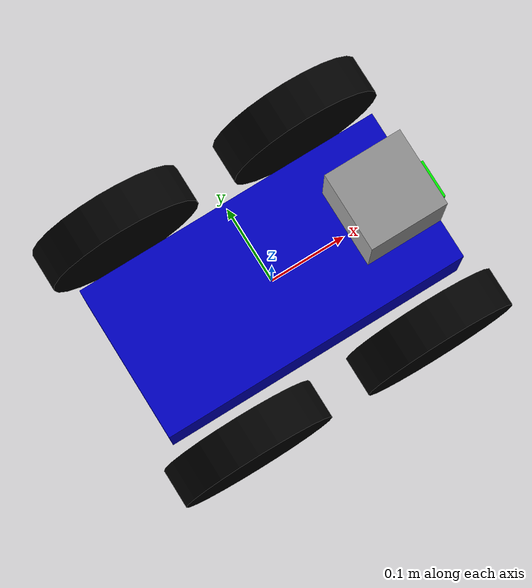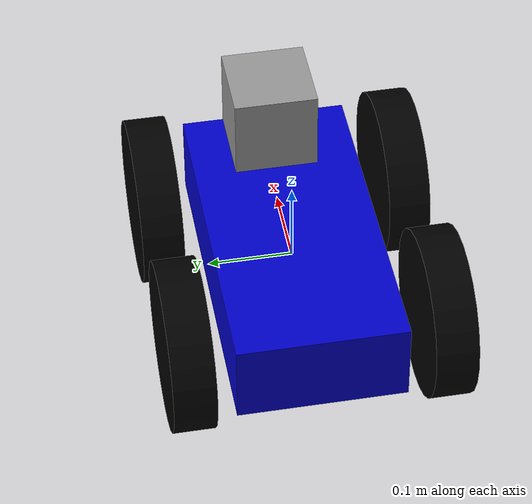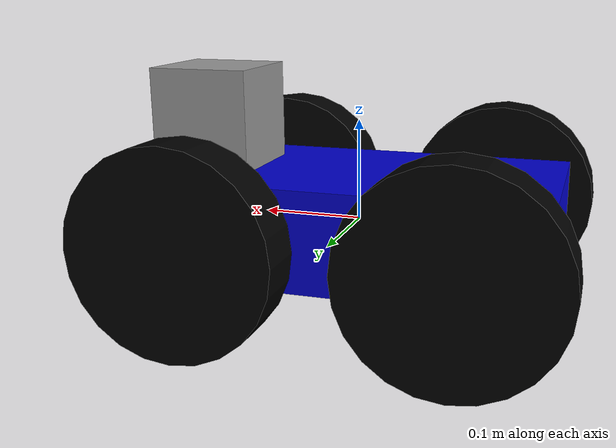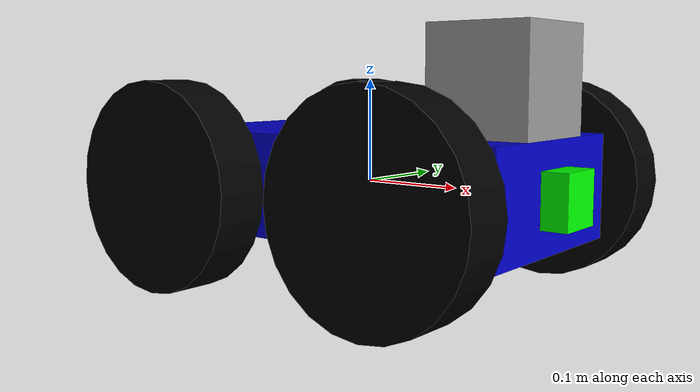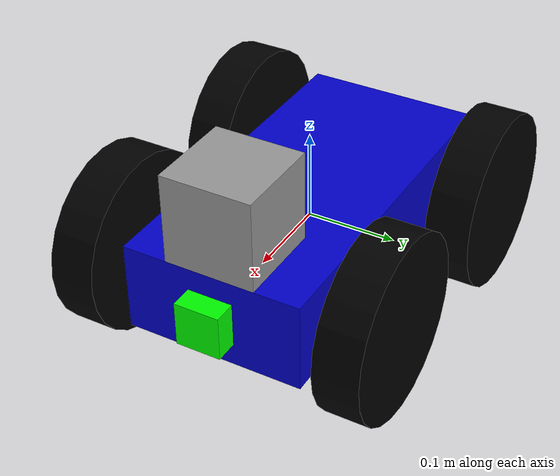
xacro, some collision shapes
<?xml version='1.0'?>

<robot name="rover_bot" xmlns:xacro="http://www.ros.org/wiki/xacro">

  <!-- Color descriptions -->
  <material name="blue">
    <color rgba="0 0 0.8 1"/>
  </material>

  <material name="black">
    <color rgba="0 0 0 1"/>
  </material>

  <material name="white">
    <color rgba="1 1 1 1"/>
  </material>

  <material name="green">
    <color rgba="0 1 0 1"/>
  </material>

  <!-- robot -->
  <xacro:include filename="$(find rover_bot)/urdf/rover_bot.gazebo" />

  <link name="robot_footprint"></link>

  <link name='chassis'>
    <pose>0 0 0.1 0 0 0</pose>

    <inertial>
      <mass value="15.0"/>
      <origin xyz="0.0 0 0" rpy=" 0 0 0"/>
      <inertia
          ixx="0.1" ixy="0" ixz="0"
          iyy="0.1" iyz="0"
          izz="0.1"
      />
    </inertial>

    <collision name='collision'>
      <origin xyz="0 0 0" rpy=" 0 0 0"/>
      <geometry>
        <box size=".4 .2 .1"/>
      </geometry>
    </collision>

    <visual>
      <origin xyz="0 0 0" rpy=" 0 0 0"/>
      <geometry>
        <box size=".4 .2 .1"/>
      </geometry>
      <material name="blue"/>
    </visual>
  </link>

  <joint name="robot_footprint_joint" type="fixed">
    <origin xyz="0 0 0" rpy="0 0 0" />
    <parent link="robot_footprint"/>
    <child link="chassis" />
  </joint>

  <link name='left_front_wheel'>
    <inertial>
      <mass value="5.0"/>
      <origin xyz="0.0 0 0" rpy=" 0 1.5707 1.5707"/>
      <inertia
          ixx="0.1" ixy="0" ixz="0"
          iyy="0.1" iyz="0"
          izz="0.1"
      />
    </inertial>

    <collision name='collision'>
      <origin xyz="0 0 0" rpy=" 0 1.5707 1.5707"/>
      <geometry>
        <cylinder radius="0.1" length="0.05"/>
      </geometry>
    </collision>

    <visual>
      <origin xyz="0 0 0" rpy=" 0 1.5707 1.5707"/>
      <geometry>
        <cylinder radius="0.1" length="0.05"/>
      </geometry>
      <material name="black"/>
    </visual>
  </link>

  <joint type="continuous" name="left_front_wheel_hinge">
      <origin xyz="0.125 0.15 0" rpy="0 0 0"/>
      <child link="left_front_wheel"/>
      <parent link="chassis"/>
      <axis xyz="0 1 0" rpy="0 0 0"/>
      <limit effort="10000" velocity="1000"/>
      <dynamics damping="1.0" friction="1.0"/>
   </joint>

   <link name='right_front_wheel'>
     <inertial>
       <mass value="5.0"/>
       <origin xyz="0.0 0 0" rpy=" 0 1.5707 1.5707"/>
       <inertia
           ixx="0.1" ixy="0" ixz="0"
           iyy="0.1" iyz="0"
           izz="0.1"
       />
     </inertial>

     <collision name='collision'>
       <origin xyz="0 0 0" rpy=" 0 1.5707 1.5707"/>
       <geometry>
         <cylinder radius="0.1" length="0.05"/>
       </geometry>
     </collision>

     <visual>
       <origin xyz="0 0 0" rpy=" 0 1.5707 1.5707"/>
       <geometry>
         <cylinder radius="0.1" length="0.05"/>
       </geometry>
       <material name="black"/>
     </visual>
   </link>

   <joint type="continuous" name="right_front_wheel_hinge">
       <origin xyz="0.125 -0.15 0" rpy="0 0 0"/>
       <child link="right_front_wheel"/>
       <parent link="chassis"/>
       <axis xyz="0 1 0" rpy="0 0 0"/>
       <limit effort="10000" velocity="1000"/>
       <dynamics damping="1.0" friction="1.0"/>
    </joint>

    <link name='left_back_wheel'>
      <inertial>
        <mass value="5.0"/>
        <origin xyz="0.0 0 0" rpy=" 0 1.5707 1.5707"/>
        <inertia
            ixx="0.1" ixy="0" ixz="0"
            iyy="0.1" iyz="0"
            izz="0.1"
        />
      </inertial>

      <collision name='collision'>
        <origin xyz="0 0 0" rpy=" 0 1.5707 1.5707"/>
        <geometry>
          <cylinder radius="0.1" length="0.05"/>
        </geometry>
      </collision>

      <visual>
        <origin xyz="0 0 0" rpy=" 0 1.5707 1.5707"/>
        <geometry>
          <cylinder radius="0.1" length="0.05"/>
        </geometry>
        <material name="black"/>
      </visual>
    </link>

    <joint type="continuous" name="left_back_wheel_hinge">
        <origin xyz="-0.125 0.15 0" rpy="0 0 0"/>
        <child link="left_back_wheel"/>
        <parent link="chassis"/>
        <axis xyz="0 1 0" rpy="0 0 0"/>
        <limit effort="10000" velocity="1000"/>
        <dynamics damping="1.0" friction="1.0"/>
     </joint>

     <link name='right_back_wheel'>
       <inertial>
         <mass value="5.0"/>
         <origin xyz="0.0 0 0" rpy=" 0 1.5707 1.5707"/>
         <inertia
             ixx="0.1" ixy="0" ixz="0"
             iyy="0.1" iyz="0"
             izz="0.1"
         />
       </inertial>

       <collision name='collision'>
         <origin xyz="0 0 0" rpy=" 0 1.5707 1.5707"/>
         <geometry>
           <cylinder radius="0.1" length="0.05"/>
         </geometry>
       </collision>

       <visual>
         <origin xyz="0 0 0" rpy=" 0 1.5707 1.5707"/>
         <geometry>
           <cylinder radius="0.1" length="0.05"/>
         </geometry>
         <material name="black"/>
       </visual>
     </link>

     <joint type="continuous" name="right_back_wheel_hinge">
         <origin xyz="-0.125 -0.15 0" rpy="0 0 0"/>
         <child link="right_back_wheel"/>
         <parent link="chassis"/>
         <axis xyz="0 1 0" rpy="0 0 0"/>
         <limit effort="10000" velocity="1000"/>
         <dynamics damping="1.0" friction="1.0"/>
      </joint>

    <!-- Camera link -->

    <link name="camera">
        <inertial>
          <mass value="0.1"/>
          <origin xyz="0 0 0" rpy="0 0 0"/>
          <inertia
              ixx="1e-6" ixy="0" ixz="0"
              iyy="1e-6" iyz="0"
              izz="1e-6"
          />
    </inertial>

    <collision name="collision">
        <origin xyz="0 0 0" rpy="0 0 0"/>
        <geometry>
            <box size="0.05 0.05 0.05" />
        </geometry>
        </collision>

    <visual>
        <origin xyz="0 0 0" rpy="0 0 0"/>
        <geometry>
            <box size="0.05 0.05 0.05" />
        </geometry>
        <material name="green"/>
     </visual>
   </link>

    <!-- Camera Joint -->

    <joint type="fixed" name="camera_joint">
        <origin xyz="0.2 0 0" rpy="0 0 0"/>
        <child link="camera"/>
        <parent link="chassis"/>
    </joint>

    <!-- rgbd camera -->

    <link name="camera_rgbd_frame"/>

    <!-- camera rgbd joint -->

    <joint name="camera_rgbd_joint" type="fixed">
      <origin xyz="0 0 0" rpy="-1.5707 0 -1.5707"/>
      <child link="camera_rgbd_frame"/>
      <parent link="camera"/>
    </joint>

    <!-- Laser Rangefinder link -->

    <link name="hokuyo">
        <inertial>
          <mass value="0.1"/>
          <origin xyz="0 0 0" rpy="0 0 0"/>
          <inertia
              ixx="1e-6" ixy="0" ixz="0"
              iyy="1e-6" iyz="0"
              izz="1e-6"
          />
        </inertial>

        <collision name="collision">
            <origin xyz="0 0 0" rpy="0 0 0"/>
            <geometry>
                <box size="0.1 0.1 0.1" />
            </geometry>
        </collision>

        <visual>
           <origin xyz="0 0 0" rpy="0 0 0"/>
           <geometry>
               <mesh filename="package://rover_bot/meshes/hokuyo.dae"/>
               <!-- mesh filename="$(find rover_bot)/meshes/hokuyo.dae"/ -->
           </geometry>
        </visual>
    </link>

    <!-- Laser Rangefinder Joint -->

    <joint type="fixed" name="hokuyo_joint">
        <origin xyz=".15 0 0.1" rpy="0 0 0"/>
        <child link="hokuyo"/>
        <parent link="chassis"/>
    </joint>

</robot>
